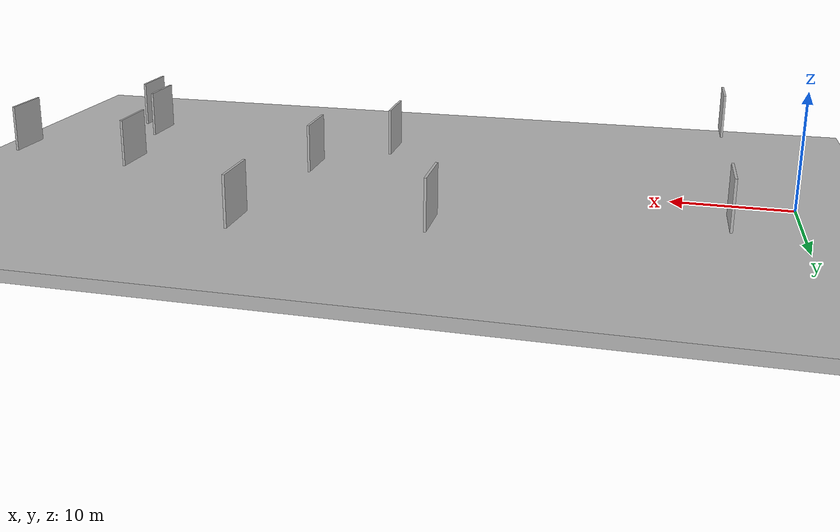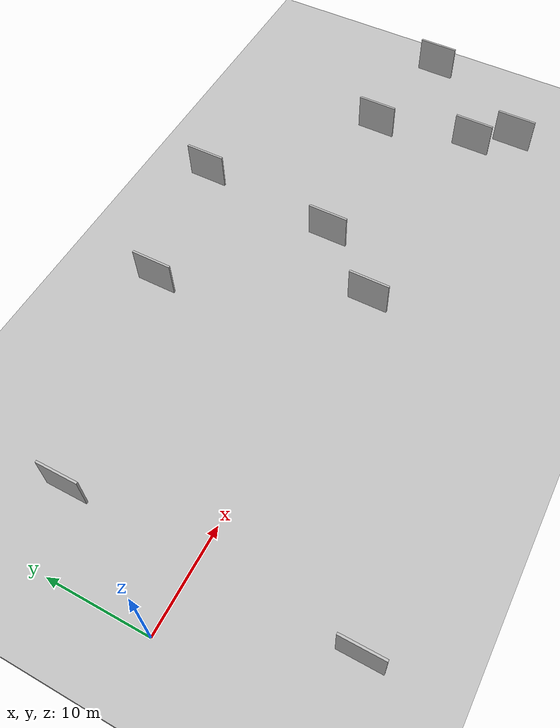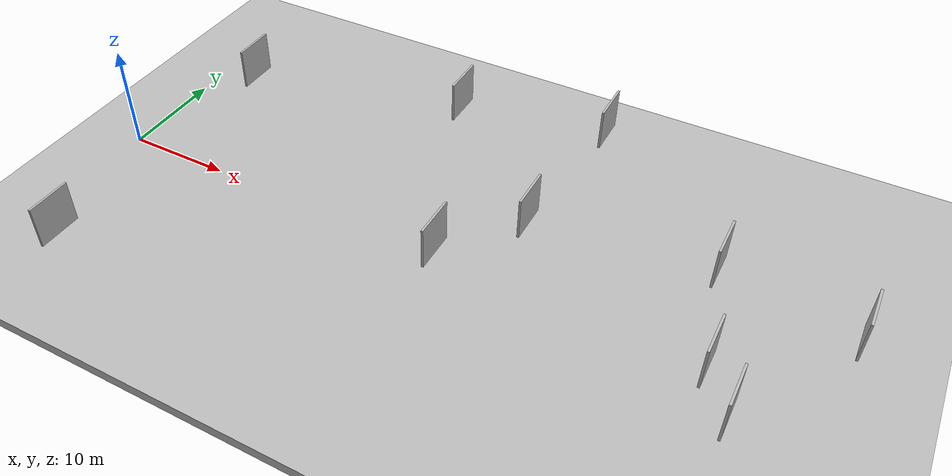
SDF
<?xml version="1.0" encoding="utf-8"?>

<sdf version="1.6">

   <world name="default">

      <gui fullscreen="0">

         <camera name="user_camera">

            <pose>-15 0 4.57585 0 0 0</pose>

            <view_controller>orbit</view_controller>

         </camera>

      </gui>

      <scene>

         <sky>

           <clouds>

             <speed>12</speed>

           </clouds>

         </sky>

         <ambient>0.4 0.4 0.4 1</ambient>

         <background>0.7 0.7 0.7 1</background>

         <shadows>1</shadows>

      </scene>

      <gravity>0 0 -9.8066</gravity>

      <magnetic_field>6e-06 2.3e-05 -4.2e-05</magnetic_field>

      <physics default="0" name="default_physics" type="ode">

         <ode>

            <solver>

               <type>quick</type>

               <iters>10</iters>

               <sor>1.0</sor>

               <use_dynamic_moi_rescaling>0</use_dynamic_moi_rescaling>

            </solver>

            <constraints>

               <cfm>0</cfm>

               <erp>0.2</erp>

               <contact_max_correcting_vel>100</contact_max_correcting_vel>

               <contact_surface_layer>0.001</contact_surface_layer>

            </constraints>

         </ode>

         <max_step_size>0.004</max_step_size>

         <real_time_factor>1</real_time_factor>

         <real_time_update_rate>250</real_time_update_rate>

      </physics>

      <light name="sun" type="directional">

         <cast_shadows>1</cast_shadows>

         <pose>0 0 10 0 0 0</pose>

         <diffuse>0.8 0.8 0.8 1</diffuse>

         <specular>0.2 0.2 0.2 1</specular>

         <attenuation>

            <range>1000</range>

            <constant>0.9</constant>

            <linear>0.01</linear>

            <quadratic>0.001</quadratic>

         </attenuation>

         <direction>-0.5 0.1 -0.9</direction>

      </light>

      <include>

         <name>ground_plane_1</name>

         <uri>model://HANNAS_ground_plane</uri>

         <pose>0 0 0  0 0 0</pose>

      </include>

      <include>

         <name>ground_plane_2</name>

         <uri>model://HANNAS_ground_plane</uri>

         <pose>100 0 0  0 0 0</pose>

      </include>

      <model name="HANNAS_wall_1">

         <static>1</static>

         <pose frame="">5.3656 -15.1330 2.5 0.000000 0.000000 1.570796</pose>

         <link name="link">

            <pose frame="">0 0 2.00 0 0 0</pose>

            <collision name="collision">

               <geometry>

                  <box>

                     <size>4.00 0.2 4.00</size>

                  </box>

               </geometry>

               <max_contacts>10</max_contacts>

               <surface>

                  <contact>

                     <ode/>

                  </contact>

                  <bounce/>

                  <friction>

                     <torsional>

                        <ode/>

                     </torsional>

                     <ode/>

                  </friction>

               </surface>

            </collision>

            <visual name="visual">

               <cast_shadows>0</cast_shadows>

               <geometry>

                  <box>

                     <size>4.00 0.2 4.00</size>

                  </box>

               </geometry>

               <material>

                  <script>

                     <uri>model://HANNAS_wall/materials/scripts</uri>

                     <uri>model://HANNAS_wall/materials/textures</uri>

                     <name>vrc/HANNAS_wall</name>

                  </script>

               </material>

            </visual>

            <self_collide>0</self_collide>

            <enable_wind>0</enable_wind>

            <kinematic>0</kinematic>

         </link>

      </model>

      <model name="HANNAS_wall_2">

         <static>1</static>

         <pose frame="">41.0006 19.5935 2.5 0.000000 0.000000 1.570796</pose>

         <link name="link">

            <pose frame="">0 0 2.00 0 0 0</pose>

            <collision name="collision">

               <geometry>

                  <box>

                     <size>4.00 0.2 4.00</size>

                  </box>

               </geometry>

               <max_contacts>10</max_contacts>

               <surface>

                  <contact>

                     <ode/>

                  </contact>

                  <bounce/>

                  <friction>

                     <torsional>

                        <ode/>

                     </torsional>

                     <ode/>

                  </friction>

               </surface>

            </collision>

            <visual name="visual">

               <cast_shadows>0</cast_shadows>

               <geometry>

                  <box>

                     <size>4.00 0.2 4.00</size>

                  </box>

               </geometry>

               <material>

                  <script>

                     <uri>model://HANNAS_wall/materials/scripts</uri>

                     <uri>model://HANNAS_wall/materials/textures</uri>

                     <name>vrc/HANNAS_wall</name>

                  </script>

               </material>

            </visual>

            <self_collide>0</self_collide>

            <enable_wind>0</enable_wind>

            <kinematic>0</kinematic>

         </link>

      </model>

      <model name="HANNAS_wall_3">

         <static>1</static>

         <pose frame="">27.0403 16.8243 2.5 0.000000 0.000000 1.570796</pose>

         <link name="link">

            <pose frame="">0 0 2.00 0 0 0</pose>

            <collision name="collision">

               <geometry>

                  <box>

                     <size>4.00 0.2 4.00</size>

                  </box>

               </geometry>

               <max_contacts>10</max_contacts>

               <surface>

                  <contact>

                     <ode/>

                  </contact>

                  <bounce/>

                  <friction>

                     <torsional>

                        <ode/>

                     </torsional>

                     <ode/>

                  </friction>

               </surface>

            </collision>

            <visual name="visual">

               <cast_shadows>0</cast_shadows>

               <geometry>

                  <box>

                     <size>4.00 0.2 4.00</size>

                  </box>

               </geometry>

               <material>

                  <script>

                     <uri>model://HANNAS_wall/materials/scripts</uri>

                     <uri>model://HANNAS_wall/materials/textures</uri>

                     <name>vrc/HANNAS_wall</name>

                  </script>

               </material>

            </visual>

            <self_collide>0</self_collide>

            <enable_wind>0</enable_wind>

            <kinematic>0</kinematic>

         </link>

      </model>

      <model name="HANNAS_wall_4">

         <static>1</static>

         <pose frame="">34.2761 -1.9360 2.5 0.000000 0.000000 1.570796</pose>

         <link name="link">

            <pose frame="">0 0 2.00 0 0 0</pose>

            <collision name="collision">

               <geometry>

                  <box>

                     <size>4.00 0.2 4.00</size>

                  </box>

               </geometry>

               <max_contacts>10</max_contacts>

               <surface>

                  <contact>

                     <ode/>

                  </contact>

                  <bounce/>

                  <friction>

                     <torsional>

                        <ode/>

                     </torsional>

                     <ode/>

                  </friction>

               </surface>

            </collision>

            <visual name="visual">

               <cast_shadows>0</cast_shadows>

               <geometry>

                  <box>

                     <size>4.00 0.2 4.00</size>

                  </box>

               </geometry>

               <material>

                  <script>

                     <uri>model://HANNAS_wall/materials/scripts</uri>

                     <uri>model://HANNAS_wall/materials/textures</uri>

                     <name>vrc/HANNAS_wall</name>

                  </script>

               </material>

            </visual>

            <self_collide>0</self_collide>

            <enable_wind>0</enable_wind>

            <kinematic>0</kinematic>

         </link>

      </model>

      <model name="HANNAS_wall_5">

         <static>1</static>

         <pose frame="">67.1758 5.0999 2.5 0.000000 0.000000 1.570796</pose>

         <link name="link">

            <pose frame="">0 0 2.00 0 0 0</pose>

            <collision name="collision">

               <geometry>

                  <box>

                     <size>4.00 0.2 4.00</size>

                  </box>

               </geometry>

               <max_contacts>10</max_contacts>

               <surface>

                  <contact>

                     <ode/>

                  </contact>

                  <bounce/>

                  <friction>

                     <torsional>

                        <ode/>

                     </torsional>

                     <ode/>

                  </friction>

               </surface>

            </collision>

            <visual name="visual">

               <cast_shadows>0</cast_shadows>

               <geometry>

                  <box>

                     <size>4.00 0.2 4.00</size>

                  </box>

               </geometry>

               <material>

                  <script>

                     <uri>model://HANNAS_wall/materials/scripts</uri>

                     <uri>model://HANNAS_wall/materials/textures</uri>

                     <name>vrc/HANNAS_wall</name>

                  </script>

               </material>

            </visual>

            <self_collide>0</self_collide>

            <enable_wind>0</enable_wind>

            <kinematic>0</kinematic>

         </link>

      </model>

      <model name="HANNAS_wall_6">

         <static>1</static>

         <pose frame="">60.2726 -6.6249 2.5 0.000000 0.000000 1.570796</pose>

         <link name="link">

            <pose frame="">0 0 2.00 0 0 0</pose>

            <collision name="collision">

               <geometry>

                  <box>

                     <size>4.00 0.2 4.00</size>

                  </box>

               </geometry>

               <max_contacts>10</max_contacts>

               <surface>

                  <contact>

                     <ode/>

                  </contact>

                  <bounce/>

                  <friction>

                     <torsional>

                        <ode/>

                     </torsional>

                     <ode/>

                  </friction>

               </surface>

            </collision>

            <visual name="visual">

               <cast_shadows>0</cast_shadows>

               <geometry>

                  <box>

                     <size>4.00 0.2 4.00</size>

                  </box>

               </geometry>

               <material>

                  <script>

                     <uri>model://HANNAS_wall/materials/scripts</uri>

                     <uri>model://HANNAS_wall/materials/textures</uri>

                     <name>vrc/HANNAS_wall</name>

                  </script>

               </material>

            </visual>

            <self_collide>0</self_collide>

            <enable_wind>0</enable_wind>

            <kinematic>0</kinematic>

         </link>

      </model>

      <model name="HANNAS_wall_7">

         <static>1</static>

         <pose frame="">39.5802 4.9560 2.5 0.000000 0.000000 1.570796</pose>

         <link name="link">

            <pose frame="">0 0 2.00 0 0 0</pose>

            <collision name="collision">

               <geometry>

                  <box>

                     <size>4.00 0.2 4.00</size>

                  </box>

               </geometry>

               <max_contacts>10</max_contacts>

               <surface>

                  <contact>

                     <ode/>

                  </contact>

                  <bounce/>

                  <friction>

                     <torsional>

                        <ode/>

                     </torsional>

                     <ode/>

                  </friction>

               </surface>

            </collision>

            <visual name="visual">

               <cast_shadows>0</cast_shadows>

               <geometry>

                  <box>

                     <size>4.00 0.2 4.00</size>

                  </box>

               </geometry>

               <material>

                  <script>

                     <uri>model://HANNAS_wall/materials/scripts</uri>

                     <uri>model://HANNAS_wall/materials/textures</uri>

                     <name>vrc/HANNAS_wall</name>

                  </script>

               </material>

            </visual>

            <self_collide>0</self_collide>

            <enable_wind>0</enable_wind>

            <kinematic>0</kinematic>

         </link>

      </model>

      <model name="HANNAS_wall_8">

         <static>1</static>

         <pose frame="">57.6655 -2.9235 2.5 0.000000 0.000000 1.570796</pose>

         <link name="link">

            <pose frame="">0 0 2.00 0 0 0</pose>

            <collision name="collision">

               <geometry>

                  <box>

                     <size>4.00 0.2 4.00</size>

                  </box>

               </geometry>

               <max_contacts>10</max_contacts>

               <surface>

                  <contact>

                     <ode/>

                  </contact>

                  <bounce/>

                  <friction>

                     <torsional>

                        <ode/>

                     </torsional>

                     <ode/>

                  </friction>

               </surface>

            </collision>

            <visual name="visual">

               <cast_shadows>0</cast_shadows>

               <geometry>

                  <box>

                     <size>4.00 0.2 4.00</size>

                  </box>

               </geometry>

               <material>

                  <script>

                     <uri>model://HANNAS_wall/materials/scripts</uri>

                     <uri>model://HANNAS_wall/materials/textures</uri>

                     <name>vrc/HANNAS_wall</name>

                  </script>

               </material>

            </visual>

            <self_collide>0</self_collide>

            <enable_wind>0</enable_wind>

            <kinematic>0</kinematic>

         </link>

      </model>

      <model name="HANNAS_wall_9">

         <static>1</static>

         <pose frame="">6.0509 11.7176 2.5 0.000000 0.000000 1.570796</pose>

         <link name="link">

            <pose frame="">0 0 2.00 0 0 0</pose>

            <collision name="collision">

               <geometry>

                  <box>

                     <size>4.00 0.2 4.00</size>

                  </box>

               </geometry>

               <max_contacts>10</max_contacts>

               <surface>

                  <contact>

                     <ode/>

                  </contact>

                  <bounce/>

                  <friction>

                     <torsional>

                        <ode/>

                     </torsional>

                     <ode/>

                  </friction>

               </surface>

            </collision>

            <visual name="visual">

               <cast_shadows>0</cast_shadows>

               <geometry>

                  <box>

                     <size>4.00 0.2 4.00</size>

                  </box>

               </geometry>

               <material>

                  <script>

                     <uri>model://HANNAS_wall/materials/scripts</uri>

                     <uri>model://HANNAS_wall/materials/textures</uri>

                     <name>vrc/HANNAS_wall</name>

                  </script>

               </material>

            </visual>

            <self_collide>0</self_collide>

            <enable_wind>0</enable_wind>

            <kinematic>0</kinematic>

         </link>

      </model>

      <model name="HANNAS_wall_10">

         <static>1</static>

         <pose frame="">55.5144 7.1656 2.5 0.000000 0.000000 1.570796</pose>

         <link name="link">

            <pose frame="">0 0 2.00 0 0 0</pose>

            <collision name="collision">

               <geometry>

                  <box>

                     <size>4.00 0.2 4.00</size>

                  </box>

               </geometry>

               <max_contacts>10</max_contacts>

               <surface>

                  <contact>

                     <ode/>

                  </contact>

                  <bounce/>

                  <friction>

                     <torsional>

                        <ode/>

                     </torsional>

                     <ode/>

                  </friction>

               </surface>

            </collision>

            <visual name="visual">

               <cast_shadows>0</cast_shadows>

               <geometry>

                  <box>

                     <size>4.00 0.2 4.00</size>

                  </box>

               </geometry>

               <material>

                  <script>

                     <uri>model://HANNAS_wall/materials/scripts</uri>

                     <uri>model://HANNAS_wall/materials/textures</uri>

                     <name>vrc/HANNAS_wall</name>

                  </script>

               </material>

            </visual>

            <self_collide>0</self_collide>

            <enable_wind>0</enable_wind>

            <kinematic>0</kinematic>

         </link>

      </model>

   </world>

</sdf>

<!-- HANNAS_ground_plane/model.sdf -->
<sdf version="1.4">
<model name="HANNAS_ground_plane">
  <static>true</static>
    <link name="link">
      <collision name="collision">
        <geometry>
          <plane>
            <normal>0 0 1</normal>
            <size>1000 1000</size>
          </plane>
        </geometry>
        <surface>
          <friction>
            <ode>
              <mu>100</mu>
              <mu2>50</mu2>
            </ode>
          </friction>
        </surface>
      </collision>
      <visual name="visual">
        <cast_shadows>false</cast_shadows>
        <geometry>
          <plane>
            <normal>0 0 1</normal>
            <size>1000 1000</size>
          </plane>
        </geometry>
        <material>
          <script>
            <uri>model://HANNAS_ground_plane/materials/scripts/HANNAS_ground_plane.material</uri>
	    <uri>model://HANNAS_ground_plane/materials/textures</uri>
            <name>HANNASGroundPlane/Image</name>
          </script>
        </material>
      </visual>
    </link>
  </model>
</sdf>
